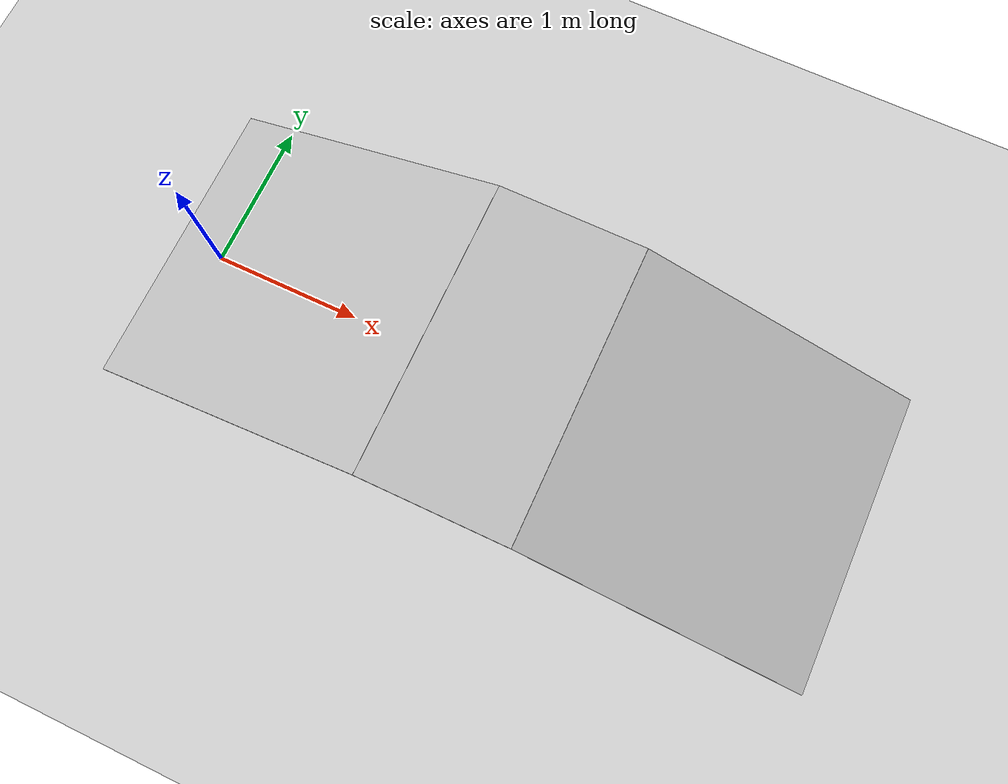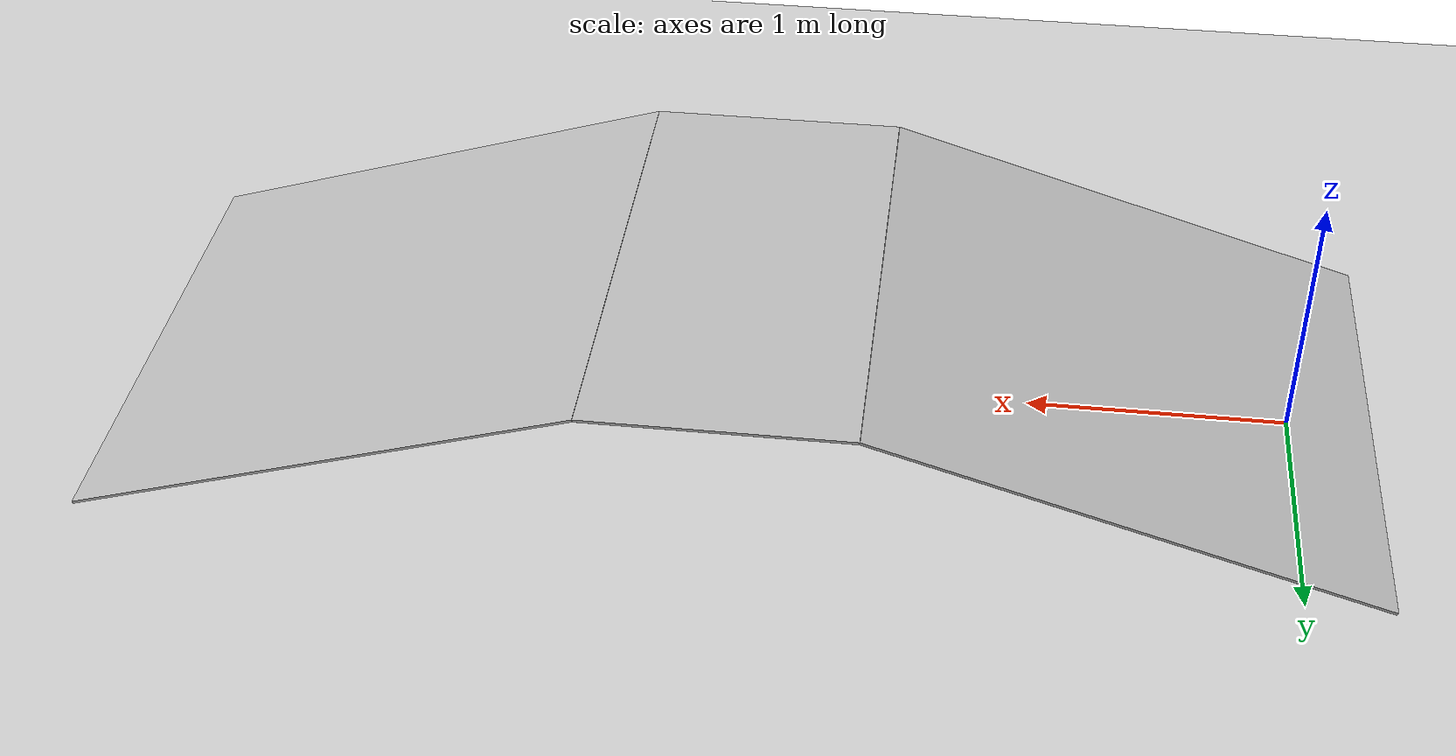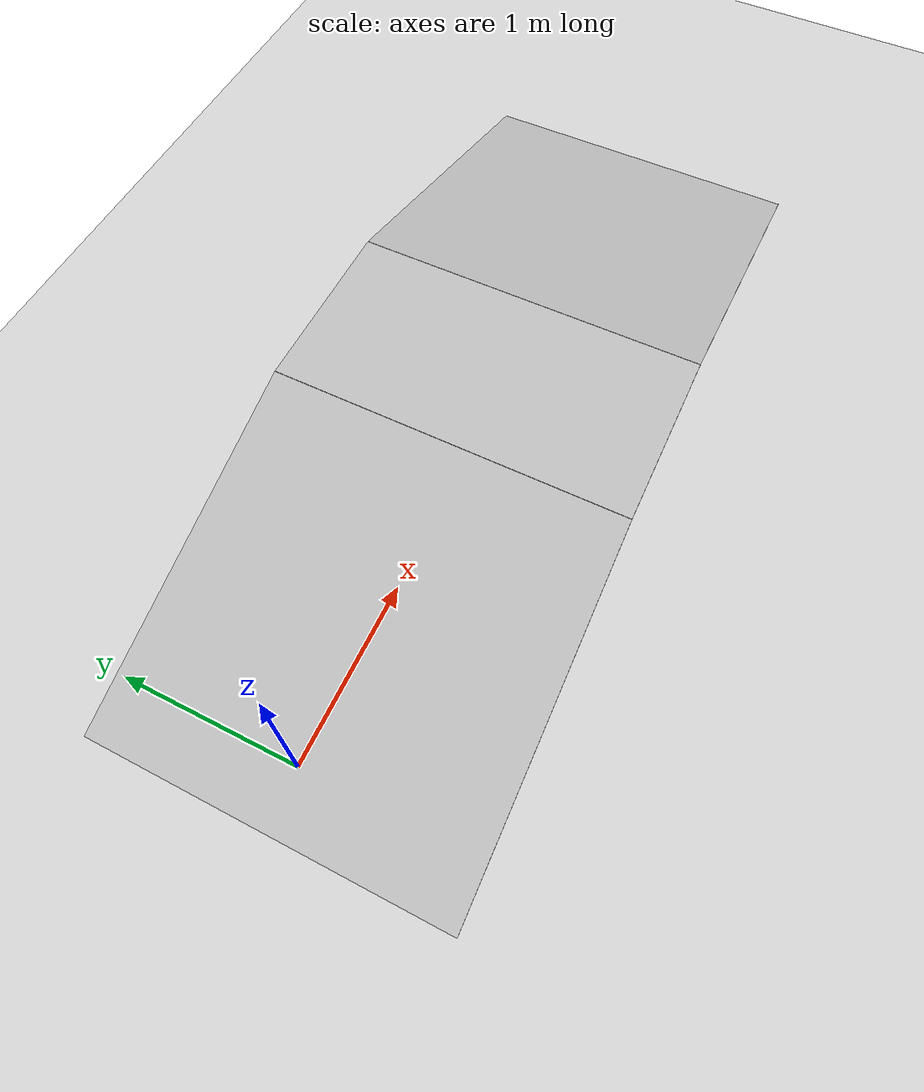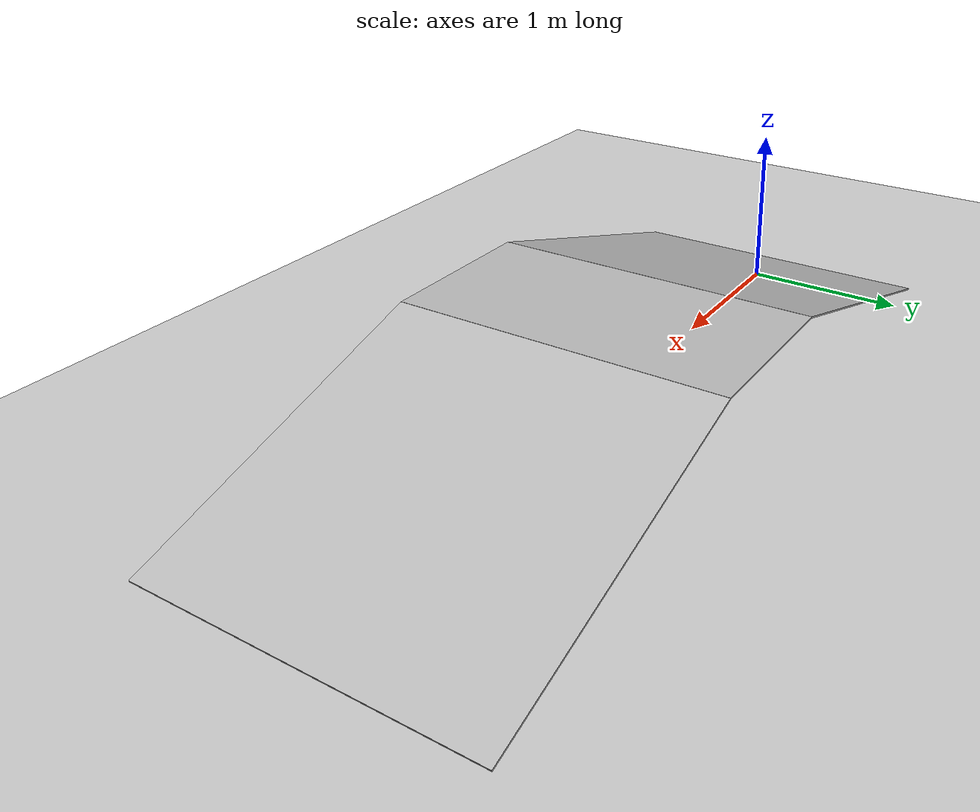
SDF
<sdf version="1.4">
 <world name="default">
  <gravity>0.000000 0.000000 -9.810000</gravity>
  <light name="sun" type="directional">
   <pose>0 0 10 0 -0 0</pose>
   <diffuse>0.8 0.8 0.8 1</diffuse>
   <specular>0.2 0.2 0.2 1</specular>
   <attenuation>
    <range>1000</range>
    <constant>0.9</constant>
    <linear>0.01</linear>
    <quadratic>0.001</quadratic>
   </attenuation>
   <direction>-0.5 0.1 -0.9</direction>
  </light>
  <include><uri>model://slope</uri><pose>5.5 0 0 0 0 3.1415</pose></include>
  <model name="ground_plane">
   <static>1</static>
   <link name="link">
    <collision name="collision">
     <geometry><plane><normal>0 0 1</normal><size>100 100</size></plane></geometry>
     <surface><friction><ode><mu>100</mu><mu2>50</mu2><fdir1>1 0 0</fdir1></ode></friction></surface>
    </collision>
    <visual name="visual">
     <cast_shadows>0</cast_shadows>
     <geometry><plane><normal>0 0 1</normal><size>100 100</size></plane></geometry>
     <material>
      <script><uri>file://media/materials/scripts/gazebo.material</uri><name>Gazebo/Grey</name></script>
     </material>
    </visual>
    <velocity_decay><linear>0</linear><angular>0</angular></velocity_decay>
   </link>
  </model>
  <scene><ambient>0.4 0.4 0.4 1</ambient><background>0.7 0.7 0.7 1</background><shadows>1</shadows></scene>
  <spherical_coordinates>
   <surface_model>EARTH_WGS84</surface_model>
   <latitude_deg>0</latitude_deg>
   <longitude_deg>0</longitude_deg>
   <elevation>0</elevation>
   <heading_deg>0</heading_deg>
  </spherical_coordinates>
 </world>
</sdf>

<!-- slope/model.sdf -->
<sdf version="1.4">

  <model name="slope">
    <static>true</static>
    <pose>0.5 0 0 0 0 0</pose>

    <link name="slope_up">
    <pose>1.95533648913 0 0.295520206661 0 -0.3 0</pose>
      <collision name="collision">
        <geometry>
          <box>
            <size>2.0 2 0.01</size>
          </box>
        </geometry>
      </collision>
      <visual name="visual">
        <geometry>
          <box>
            <size>2.0 2 0.01</size>
          </box>
        </geometry>
      </visual>
    </link>

    <link name='slope_zero'>
      <pose>3.41067297825 0 0.591040413323 0 0 0</pose>
      <collision name="collision">
        <geometry>
          <box>
            <size>1.0 2 0.01</size>
          </box>
        </geometry>
      </collision>
      <visual name="visual">
        <geometry>
          <box>
            <size>1.0 2 0.01</size>
          </box>
        </geometry>
      </visual>
    </link>

    <link name="slope_down">
    <pose>4.86600946738 0 0.295520206661 0 0.3 0</pose>
      <collision name="collision">
        <geometry>
          <box>
            <size>2.0 2 0.01</size>
          </box>
        </geometry>
      </collision>
      <visual name="visual">
        <geometry>
          <box>
            <size>2.0 2 0.01</size>
          </box>
        </geometry>
      </visual>
    </link>

  </model>
</sdf>
